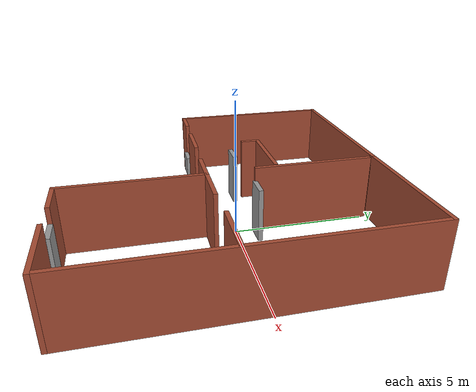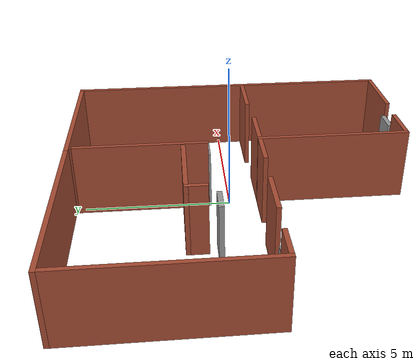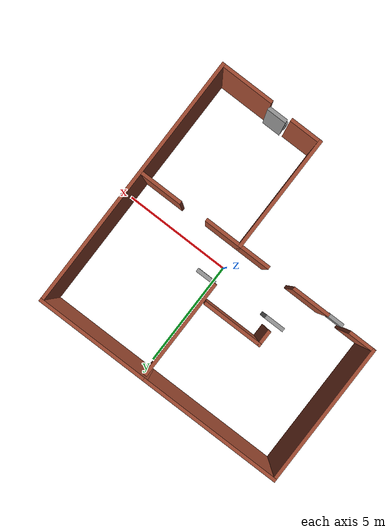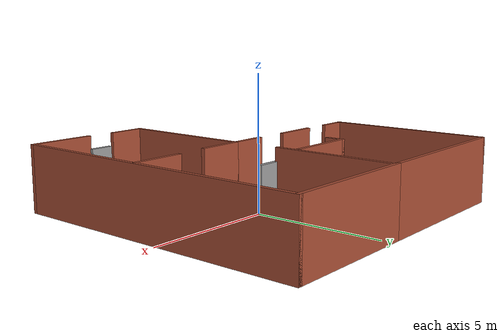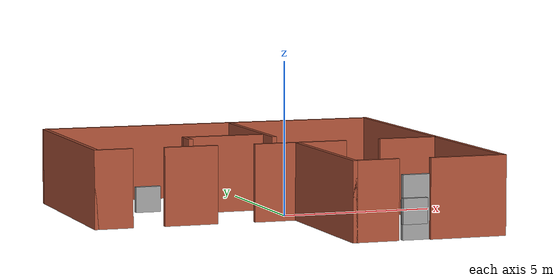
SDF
<?xml version='1.0'?>
<sdf version='1.7'>
  <model name='ex07_house.world'>
    <pose>-0.838451 -0.427217 0 0 -0 0</pose>
    <link name='Door_0'>
      <collision name='Door_0_Collision'>
        <geometry>
          <box>
            <size>0.9 0.17 2</size>
          </box>
        </geometry>
        <pose>0 0 1 0 -0 0</pose>
      </collision>
      <visual name='Door_0_Visual'>
        <pose>0 0 1 0 -0 0</pose>
        <geometry>
          <box>
            <size>0.9 0.17 2</size>
          </box>
        </geometry>
        <material>
          <script>
            <uri>file://media/materials/scripts/gazebo.material</uri>
            <name>Gazebo/Grey</name>
          </script>
        </material>
      </visual>
      <pose>-2.09613 0.961513 0 0 -0 0</pose>
    </link>
    <link name='Door_1'>
      <collision name='Door_1_Collision'>
        <geometry>
          <box>
            <size>0.9 0.17 2</size>
          </box>
        </geometry>
        <pose>0 0 1 0 -0 0</pose>
      </collision>
      <visual name='Door_1_Visual'>
        <pose>0 0 1 0 -0 0</pose>
        <geometry>
          <box>
            <size>0.9 0.17 2</size>
          </box>
        </geometry>
        <material>
          <script>
            <uri>file://media/materials/scripts/gazebo.material</uri>
            <name>Gazebo/Grey</name>
          </script>
        </material>
      </visual>
      <pose>1.20706 1.14761 0 0 -0 0</pose>
    </link>
    <link name='Door_2'>
      <collision name='Door_2_Collision'>
        <geometry>
          <box>
            <size>0.9 0.17 2</size>
          </box>
        </geometry>
        <pose>0 0 1 0 -0 0</pose>
      </collision>
      <visual name='Door_2_Visual'>
        <pose>0 0 1 0 -0 0</pose>
        <geometry>
          <box>
            <size>0.9 0.17 2</size>
          </box>
        </geometry>
        <material>
          <script>
            <uri>file://media/materials/scripts/gazebo.material</uri>
            <name>Gazebo/Grey</name>
          </script>
        </material>
      </visual>
      <pose>2.88192 -5.69141 0 0 -0 0</pose>
    </link>
    <link name='Wall_0'>
      <collision name='Wall_0_Collision'>
        <geometry>
          <box>
            <size>6.5 0.15 2.5</size>
          </box>
        </geometry>
        <pose>0 0 1.25 0 -0 0</pose>
      </collision>
      <visual name='Wall_0_Visual'>
        <pose>0 0 1.25 0 -0 0</pose>
        <geometry>
          <box>
            <size>6.5 0.15 2.5</size>
          </box>
        </geometry>
        <material>
          <script>
            <uri>file://media/materials/scripts/gazebo.material</uri>
            <name>Gazebo/Bricks</name>
          </script>
          <ambient>1 1 1 1</ambient>
        </material>
        <meta>
          <layer>0</layer>
        </meta>
      </visual>
      <pose>-2.55 5.8 0 0 -0 0</pose>
    </link>
    <link name='Wall_1'>
      <collision name='Wall_1_Collision'>
        <geometry>
          <box>
            <size>5.25 0.15 2.5</size>
          </box>
        </geometry>
        <pose>0 0 1.25 0 -0 0</pose>
      </collision>
      <visual name='Wall_1_Visual'>
        <pose>0 0 1.25 0 -0 0</pose>
        <geometry>
          <box>
            <size>5.25 0.15 2.5</size>
          </box>
        </geometry>
        <material>
          <script>
            <uri>file://media/materials/scripts/gazebo.material</uri>
            <name>Gazebo/Bricks</name>
          </script>
          <ambient>1 1 1 1</ambient>
        </material>
        <meta>
          <layer>0</layer>
        </meta>
      </visual>
      <pose>3.175 5.8 0 0 -0 0</pose>
    </link>
    <link name='Wall_11'>
      <collision name='Wall_11_Collision'>
        <geometry>
          <box>
            <size>4.5 0.15 2.5</size>
          </box>
        </geometry>
        <pose>0 0 1.25 0 -0 0</pose>
      </collision>
      <visual name='Wall_11_Visual'>
        <pose>0 0 1.25 0 -0 0</pose>
        <geometry>
          <box>
            <size>4.5 0.15 2.5</size>
          </box>
        </geometry>
        <material>
          <script>
            <uri>file://media/materials/scripts/gazebo.material</uri>
            <name>Gazebo/Bricks</name>
          </script>
          <ambient>1 1 1 1</ambient>
        </material>
        <meta>
          <layer>0</layer>
        </meta>
      </visual>
      <pose>0.741824 3.39238 0 0 -0 -1.5708</pose>
    </link>
    <link name='Wall_13'>
      <collision name='Wall_13_Collision'>
        <geometry>
          <box>
            <size>2.75 0.15 2.5</size>
          </box>
        </geometry>
        <pose>0 0 1.25 0 -0 0</pose>
      </collision>
      <visual name='Wall_13_Visual'>
        <pose>0 0 1.25 0 -0 0</pose>
        <geometry>
          <box>
            <size>2.75 0.15 2.5</size>
          </box>
        </geometry>
        <material>
          <script>
            <uri>file://media/materials/scripts/gazebo.material</uri>
            <name>Gazebo/Bricks</name>
          </script>
          <ambient>1 1 1 1</ambient>
        </material>
        <meta>
          <layer>0</layer>
        </meta>
      </visual>
      <pose>-0.749611 1.98504 0 0 -0 0</pose>
    </link>
    <link name='Wall_15'>
      <collision name='Wall_15_Collision'>
        <geometry>
          <box>
            <size>0.75 0.15 2.5</size>
          </box>
        </geometry>
        <pose>0 0 1.25 0 -0 0</pose>
      </collision>
      <visual name='Wall_15_Visual'>
        <pose>0 0 1.25 0 -0 0</pose>
        <geometry>
          <box>
            <size>0.75 0.15 2.5</size>
          </box>
        </geometry>
        <material>
          <script>
            <uri>file://media/materials/scripts/gazebo.material</uri>
            <name>Gazebo/Bricks</name>
          </script>
          <ambient>1 1 1 1</ambient>
        </material>
        <meta>
          <layer>0</layer>
        </meta>
      </visual>
      <pose>-2.04961 1.68504 0 0 -0 -1.5708</pose>
    </link>
    <link name='Wall_17'>
      <collision name='Wall_17_Collision'>
        <geometry>
          <box>
            <size>5.25 0.15 2.5</size>
          </box>
        </geometry>
        <pose>0 0 1.25 0 -0 0</pose>
      </collision>
      <visual name='Wall_17_Visual'>
        <pose>0 0 1.25 0 -0 0</pose>
        <geometry>
          <box>
            <size>5.25 0.15 2.5</size>
          </box>
        </geometry>
        <material>
          <script>
            <uri>file://media/materials/scripts/gazebo.material</uri>
            <name>Gazebo/Bricks</name>
          </script>
          <ambient>1 1 1 1</ambient>
        </material>
        <meta>
          <layer>0</layer>
        </meta>
      </visual>
      <pose>0.881396 -3.1703 0 0 -0 -1.5708</pose>
    </link>
    <link name='Wall_18'>
      <collision name='Wall_18_Collision'>
        <geometry>
          <box>
            <size>1.5 0.15 2.5</size>
          </box>
        </geometry>
        <pose>0 0 1.25 0 -0 0</pose>
      </collision>
      <visual name='Wall_18_Visual'>
        <pose>0 0 1.25 0 -0 0</pose>
        <geometry>
          <box>
            <size>1.5 0.15 2.5</size>
          </box>
        </geometry>
        <material>
          <script>
            <uri>file://media/materials/scripts/gazebo.material</uri>
            <name>Gazebo/Bricks</name>
          </script>
          <ambient>1 1 1 1</ambient>
        </material>
        <meta>
          <layer>0</layer>
        </meta>
      </visual>
      <pose>1.5564 -5.7203 0 0 -0 0</pose>
    </link>
    <link name='Wall_2'>
      <collision name='Wall_2_Collision'>
        <geometry>
          <box>
            <size>11.75 0.15 2.5</size>
          </box>
        </geometry>
        <pose>0 0 1.25 0 -0 0</pose>
      </collision>
      <visual name='Wall_2_Visual'>
        <pose>0 0 1.25 0 -0 0</pose>
        <geometry>
          <box>
            <size>11.75 0.15 2.5</size>
          </box>
        </geometry>
        <material>
          <script>
            <uri>file://media/materials/scripts/gazebo.material</uri>
            <name>Gazebo/Bricks</name>
          </script>
          <ambient>1 1 1 1</ambient>
        </material>
        <meta>
          <layer>0</layer>
        </meta>
      </visual>
      <pose>5.725 0 0 0 -0 -1.5708</pose>
    </link>
    <link name='Wall_20'>
      <collision name='Wall_20_Collision'>
        <geometry>
          <box>
            <size>2.5 0.15 2.5</size>
          </box>
        </geometry>
        <pose>0 0 1.25 0 -0 0</pose>
      </collision>
      <visual name='Wall_20_Visual'>
        <pose>0 0 1.25 0 -0 0</pose>
        <geometry>
          <box>
            <size>2.5 0.15 2.5</size>
          </box>
        </geometry>
        <material>
          <script>
            <uri>file://media/materials/scripts/gazebo.material</uri>
            <name>Gazebo/Bricks</name>
          </script>
          <ambient>1 1 1 1</ambient>
        </material>
        <meta>
          <layer>0</layer>
        </meta>
      </visual>
      <pose>4.55 -5.8 0 0 -0 3.14159</pose>
    </link>
    <link name='Wall_22'>
      <collision name='Wall_22_Collision'>
        <geometry>
          <box>
            <size>1.75 0.15 2.5</size>
          </box>
        </geometry>
        <pose>0 0 1.25 0 -0 0</pose>
      </collision>
      <visual name='Wall_22_Visual'>
        <pose>0 0 1.25 0 -0 0</pose>
        <geometry>
          <box>
            <size>1.75 0.15 2.5</size>
          </box>
        </geometry>
        <material>
          <script>
            <uri>file://media/materials/scripts/gazebo.material</uri>
            <name>Gazebo/Bricks</name>
          </script>
          <ambient>1 1 1 1</ambient>
        </material>
        <meta>
          <layer>0</layer>
        </meta>
      </visual>
      <pose>1.6814 -0.6203 0 0 -0 0</pose>
    </link>
    <link name='Wall_24'>
      <collision name='Wall_24_Collision'>
        <geometry>
          <box>
            <size>2 0.15 2.5</size>
          </box>
        </geometry>
        <pose>0 0 1.25 0 -0 0</pose>
      </collision>
      <visual name='Wall_24_Visual'>
        <pose>0 0 1.25 0 -0 0</pose>
        <geometry>
          <box>
            <size>2 0.15 2.5</size>
          </box>
        </geometry>
        <material>
          <script>
            <uri>file://media/materials/scripts/gazebo.material</uri>
            <name>Gazebo/Bricks</name>
          </script>
          <ambient>1 1 1 1</ambient>
        </material>
        <meta>
          <layer>0</layer>
        </meta>
      </visual>
      <pose>4.7374 -0.527252 0 0 -0 0</pose>
    </link>
    <link name='Wall_26'>
      <collision name='Wall_26_Collision'>
        <geometry>
          <box>
            <size>1.75 0.15 2.5</size>
          </box>
        </geometry>
        <pose>0 0 1.25 0 -0 0</pose>
      </collision>
      <visual name='Wall_26_Visual'>
        <pose>0 0 1.25 0 -0 0</pose>
        <geometry>
          <box>
            <size>1.75 0.15 2.5</size>
          </box>
        </geometry>
        <material>
          <script>
            <uri>file://media/materials/scripts/gazebo.material</uri>
            <name>Gazebo/Bricks</name>
          </script>
          <ambient>1 1 1 1</ambient>
        </material>
        <meta>
          <layer>0</layer>
        </meta>
      </visual>
      <pose>-2.64533 -0.573776 0 0 -0 0</pose>
    </link>
    <link name='Wall_28'>
      <collision name='Wall_28_Collision'>
        <geometry>
          <box>
            <size>1.5 0.15 2.5</size>
          </box>
        </geometry>
        <pose>0 0 1.25 0 -0 0</pose>
      </collision>
      <visual name='Wall_28_Visual'>
        <pose>0 0 1.25 0 -0 0</pose>
        <geometry>
          <box>
            <size>1.5 0.15 2.5</size>
          </box>
        </geometry>
        <material>
          <script>
            <uri>file://media/materials/scripts/gazebo.material</uri>
            <name>Gazebo/Bricks</name>
          </script>
          <ambient>1 1 1 1</ambient>
        </material>
        <meta>
          <layer>0</layer>
        </meta>
      </visual>
      <pose>0.206396 -0.6203 0 0 -0 3.14159</pose>
    </link>
    <link name='Wall_8'>
      <collision name='Wall_8_Collision'>
        <geometry>
          <box>
            <size>6.5 0.15 2.5</size>
          </box>
        </geometry>
        <pose>0 0 1.25 0 -0 0</pose>
      </collision>
      <visual name='Wall_8_Visual'>
        <pose>0 0 1.25 0 -0 0</pose>
        <geometry>
          <box>
            <size>6.5 0.15 2.5</size>
          </box>
        </geometry>
        <material>
          <script>
            <uri>file://media/materials/scripts/gazebo.material</uri>
            <name>Gazebo/Bricks</name>
          </script>
          <ambient>1 1 1 1</ambient>
        </material>
        <meta>
          <layer>0</layer>
        </meta>
      </visual>
      <pose>-5.725 2.625 0 0 -0 -1.5708</pose>
    </link>
    <link name='Wall_9'>
      <collision name='Wall_9_Collision'>
        <geometry>
          <box>
            <size>1.25 0.15 2.5</size>
          </box>
        </geometry>
        <pose>0 0 1.25 0 -0 0</pose>
      </collision>
      <visual name='Wall_9_Visual'>
        <pose>0 0 1.25 0 -0 0</pose>
        <geometry>
          <box>
            <size>1.25 0.15 2.5</size>
          </box>
        </geometry>
        <material>
          <script>
            <uri>file://media/materials/scripts/gazebo.material</uri>
            <name>Gazebo/Bricks</name>
          </script>
          <ambient>1 1 1 1</ambient>
        </material>
        <meta>
          <layer>0</layer>
        </meta>
      </visual>
      <pose>-5.175 -0.55 0 0 -0 0</pose>
    </link>
    <link name='Window_0'>
      <collision name='Window_0_Collision'>
        <geometry>
          <box>
            <size>0.8 0.17 0.8</size>
          </box>
        </geometry>
        <pose>0 0 0.4 0 -0 0</pose>
      </collision>
      <visual name='Window_0_Visual'>
        <pose>0 0 0.4 0 -0 0</pose>
        <geometry>
          <box>
            <size>0.8 0.17 0.8</size>
          </box>
        </geometry>
        <material>
          <script>
            <uri>file://media/materials/scripts/gazebo.material</uri>
            <name>Gazebo/Grey</name>
          </script>
        </material>
      </visual>
      <pose>-4.09666 -0.666824 0.5 0 -0 0</pose>
    </link>
    <link name='Window_1'>
      <collision name='Window_1_Collision'>
        <geometry>
          <box>
            <size>0.8 0.17 0.8</size>
          </box>
        </geometry>
        <pose>0 0 0.4 0 -0 0</pose>
      </collision>
      <visual name='Window_1_Visual'>
        <pose>0 0 0.4 0 -0 0</pose>
        <geometry>
          <box>
            <size>0.8 0.17 0.8</size>
          </box>
        </geometry>
        <material>
          <script>
            <uri>file://media/materials/scripts/gazebo.material</uri>
            <name>Gazebo/Grey</name>
          </script>
        </material>
      </visual>
      <pose>2.78888 -5.83098 0.5 0 -0 0</pose>
    </link>
    <static>1</static>
  </model>
</sdf>
